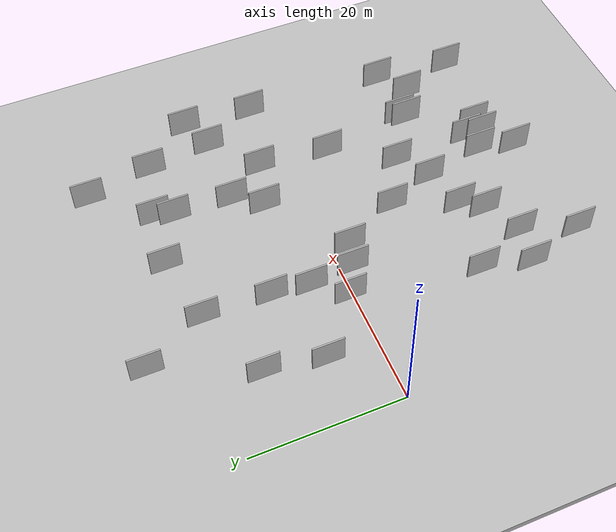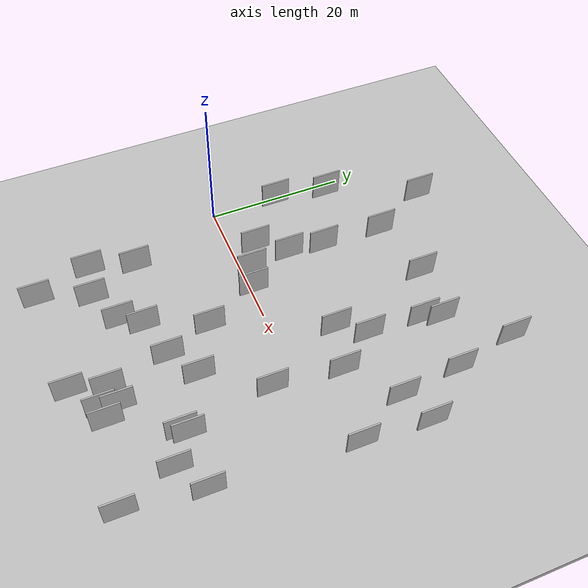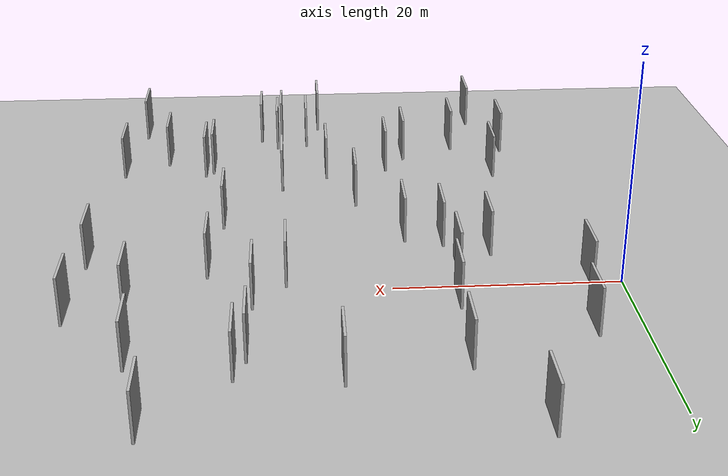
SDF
<?xml version="1.0" encoding="utf-8"?>

<sdf version="1.6">

   <world name="default">

      <gui fullscreen="0">

         <camera name="user_camera">

            <pose>-15 0 4.57585 0 0 0</pose>

            <view_controller>orbit</view_controller>

         </camera>

      </gui>

      <scene>

         <sky>

           <clouds>

             <speed>12</speed>

           </clouds>

         </sky>

         <ambient>0.4 0.4 0.4 1</ambient>

         <background>0.7 0.7 0.7 1</background>

         <shadows>1</shadows>

      </scene>

      <gravity>0 0 -9.8066</gravity>

      <magnetic_field>6e-06 2.3e-05 -4.2e-05</magnetic_field>

      <physics default="0" name="default_physics" type="ode">

         <ode>

            <solver>

               <type>quick</type>

               <iters>10</iters>

               <sor>1.0</sor>

               <use_dynamic_moi_rescaling>0</use_dynamic_moi_rescaling>

            </solver>

            <constraints>

               <cfm>0</cfm>

               <erp>0.2</erp>

               <contact_max_correcting_vel>100</contact_max_correcting_vel>

               <contact_surface_layer>0.001</contact_surface_layer>

            </constraints>

         </ode>

         <max_step_size>0.004</max_step_size>

         <real_time_factor>1</real_time_factor>

         <real_time_update_rate>250</real_time_update_rate>

      </physics>

      <light name="sun" type="directional">

         <cast_shadows>1</cast_shadows>

         <pose>0 0 10 0 0 0</pose>

         <diffuse>0.8 0.8 0.8 1</diffuse>

         <specular>0.2 0.2 0.2 1</specular>

         <attenuation>

            <range>1000</range>

            <constant>0.9</constant>

            <linear>0.01</linear>

            <quadratic>0.001</quadratic>

         </attenuation>

         <direction>-0.5 0.1 -0.9</direction>

      </light>

      <include>

         <name>ground_plane_1</name>

         <uri>model://HANNAS_ground_plane</uri>

         <pose>0 0 0  0 0 0</pose>

      </include>

      <include>

         <name>ground_plane_2</name>

         <uri>model://HANNAS_ground_plane</uri>

         <pose>100 0 0  0 0 0</pose>

      </include>

      <model name="HANNAS_wall_1">

         <static>1</static>

         <pose frame="">25.0478 20.5484 5.0 0.000000 0.000000 1.570796</pose>

         <link name="link">

            <pose frame="">0 0 2.00 0 0 0</pose>

            <collision name="collision">

               <geometry>

                  <box>

                     <size>4.00 0.2 4.00</size>

                  </box>

               </geometry>

               <max_contacts>10</max_contacts>

               <surface>

                  <contact>

                     <ode/>

                  </contact>

                  <bounce/>

                  <friction>

                     <torsional>

                        <ode/>

                     </torsional>

                     <ode/>

                  </friction>

               </surface>

            </collision>

            <visual name="visual">

               <cast_shadows>0</cast_shadows>

               <geometry>

                  <box>

                     <size>4.00 0.2 4.00</size>

                  </box>

               </geometry>

               <material>

                  <script>

                     <uri>model://HANNAS_wall/materials/scripts</uri>

                     <uri>model://HANNAS_wall/materials/textures</uri>

                     <name>vrc/HANNAS_wall</name>

                  </script>

               </material>

            </visual>

            <self_collide>0</self_collide>

            <enable_wind>0</enable_wind>

            <kinematic>0</kinematic>

         </link>

      </model>

      <model name="HANNAS_wall_2">

         <static>1</static>

         <pose frame="">31.3514 -24.1442 5.0 0.000000 0.000000 1.570796</pose>

         <link name="link">

            <pose frame="">0 0 2.00 0 0 0</pose>

            <collision name="collision">

               <geometry>

                  <box>

                     <size>4.00 0.2 4.00</size>

                  </box>

               </geometry>

               <max_contacts>10</max_contacts>

               <surface>

                  <contact>

                     <ode/>

                  </contact>

                  <bounce/>

                  <friction>

                     <torsional>

                        <ode/>

                     </torsional>

                     <ode/>

                  </friction>

               </surface>

            </collision>

            <visual name="visual">

               <cast_shadows>0</cast_shadows>

               <geometry>

                  <box>

                     <size>4.00 0.2 4.00</size>

                  </box>

               </geometry>

               <material>

                  <script>

                     <uri>model://HANNAS_wall/materials/scripts</uri>

                     <uri>model://HANNAS_wall/materials/textures</uri>

                     <name>vrc/HANNAS_wall</name>

                  </script>

               </material>

            </visual>

            <self_collide>0</self_collide>

            <enable_wind>0</enable_wind>

            <kinematic>0</kinematic>

         </link>

      </model>

      <model name="HANNAS_wall_3">

         <static>1</static>

         <pose frame="">42.7811 -25.7961 5.0 0.000000 0.000000 1.570796</pose>

         <link name="link">

            <pose frame="">0 0 2.00 0 0 0</pose>

            <collision name="collision">

               <geometry>

                  <box>

                     <size>4.00 0.2 4.00</size>

                  </box>

               </geometry>

               <max_contacts>10</max_contacts>

               <surface>

                  <contact>

                     <ode/>

                  </contact>

                  <bounce/>

                  <friction>

                     <torsional>

                        <ode/>

                     </torsional>

                     <ode/>

                  </friction>

               </surface>

            </collision>

            <visual name="visual">

               <cast_shadows>0</cast_shadows>

               <geometry>

                  <box>

                     <size>4.00 0.2 4.00</size>

                  </box>

               </geometry>

               <material>

                  <script>

                     <uri>model://HANNAS_wall/materials/scripts</uri>

                     <uri>model://HANNAS_wall/materials/textures</uri>

                     <name>vrc/HANNAS_wall</name>

                  </script>

               </material>

            </visual>

            <self_collide>0</self_collide>

            <enable_wind>0</enable_wind>

            <kinematic>0</kinematic>

         </link>

      </model>

      <model name="HANNAS_wall_4">

         <static>1</static>

         <pose frame="">45.6010 11.1795 5.0 0.000000 0.000000 1.570796</pose>

         <link name="link">

            <pose frame="">0 0 2.00 0 0 0</pose>

            <collision name="collision">

               <geometry>

                  <box>

                     <size>4.00 0.2 4.00</size>

                  </box>

               </geometry>

               <max_contacts>10</max_contacts>

               <surface>

                  <contact>

                     <ode/>

                  </contact>

                  <bounce/>

                  <friction>

                     <torsional>

                        <ode/>

                     </torsional>

                     <ode/>

                  </friction>

               </surface>

            </collision>

            <visual name="visual">

               <cast_shadows>0</cast_shadows>

               <geometry>

                  <box>

                     <size>4.00 0.2 4.00</size>

                  </box>

               </geometry>

               <material>

                  <script>

                     <uri>model://HANNAS_wall/materials/scripts</uri>

                     <uri>model://HANNAS_wall/materials/textures</uri>

                     <name>vrc/HANNAS_wall</name>

                  </script>

               </material>

            </visual>

            <self_collide>0</self_collide>

            <enable_wind>0</enable_wind>

            <kinematic>0</kinematic>

         </link>

      </model>

      <model name="HANNAS_wall_5">

         <static>1</static>

         <pose frame="">40.0653 -18.5719 5.0 0.000000 0.000000 1.570796</pose>

         <link name="link">

            <pose frame="">0 0 2.00 0 0 0</pose>

            <collision name="collision">

               <geometry>

                  <box>

                     <size>4.00 0.2 4.00</size>

                  </box>

               </geometry>

               <max_contacts>10</max_contacts>

               <surface>

                  <contact>

                     <ode/>

                  </contact>

                  <bounce/>

                  <friction>

                     <torsional>

                        <ode/>

                     </torsional>

                     <ode/>

                  </friction>

               </surface>

            </collision>

            <visual name="visual">

               <cast_shadows>0</cast_shadows>

               <geometry>

                  <box>

                     <size>4.00 0.2 4.00</size>

                  </box>

               </geometry>

               <material>

                  <script>

                     <uri>model://HANNAS_wall/materials/scripts</uri>

                     <uri>model://HANNAS_wall/materials/textures</uri>

                     <name>vrc/HANNAS_wall</name>

                  </script>

               </material>

            </visual>

            <self_collide>0</self_collide>

            <enable_wind>0</enable_wind>

            <kinematic>0</kinematic>

         </link>

      </model>

      <model name="HANNAS_wall_6">

         <static>1</static>

         <pose frame="">32.6917 19.5149 5.0 0.000000 0.000000 1.570796</pose>

         <link name="link">

            <pose frame="">0 0 2.00 0 0 0</pose>

            <collision name="collision">

               <geometry>

                  <box>

                     <size>4.00 0.2 4.00</size>

                  </box>

               </geometry>

               <max_contacts>10</max_contacts>

               <surface>

                  <contact>

                     <ode/>

                  </contact>

                  <bounce/>

                  <friction>

                     <torsional>

                        <ode/>

                     </torsional>

                     <ode/>

                  </friction>

               </surface>

            </collision>

            <visual name="visual">

               <cast_shadows>0</cast_shadows>

               <geometry>

                  <box>

                     <size>4.00 0.2 4.00</size>

                  </box>

               </geometry>

               <material>

                  <script>

                     <uri>model://HANNAS_wall/materials/scripts</uri>

                     <uri>model://HANNAS_wall/materials/textures</uri>

                     <name>vrc/HANNAS_wall</name>

                  </script>

               </material>

            </visual>

            <self_collide>0</self_collide>

            <enable_wind>0</enable_wind>

            <kinematic>0</kinematic>

         </link>

      </model>

      <model name="HANNAS_wall_7">

         <static>1</static>

         <pose frame="">12.8693 -21.0058 5.0 0.000000 0.000000 1.570796</pose>

         <link name="link">

            <pose frame="">0 0 2.00 0 0 0</pose>

            <collision name="collision">

               <geometry>

                  <box>

                     <size>4.00 0.2 4.00</size>

                  </box>

               </geometry>

               <max_contacts>10</max_contacts>

               <surface>

                  <contact>

                     <ode/>

                  </contact>

                  <bounce/>

                  <friction>

                     <torsional>

                        <ode/>

                     </torsional>

                     <ode/>

                  </friction>

               </surface>

            </collision>

            <visual name="visual">

               <cast_shadows>0</cast_shadows>

               <geometry>

                  <box>

                     <size>4.00 0.2 4.00</size>

                  </box>

               </geometry>

               <material>

                  <script>

                     <uri>model://HANNAS_wall/materials/scripts</uri>

                     <uri>model://HANNAS_wall/materials/textures</uri>

                     <name>vrc/HANNAS_wall</name>

                  </script>

               </material>

            </visual>

            <self_collide>0</self_collide>

            <enable_wind>0</enable_wind>

            <kinematic>0</kinematic>

         </link>

      </model>

      <model name="HANNAS_wall_8">

         <static>1</static>

         <pose frame="">5.2008 7.8129 5.0 0.000000 0.000000 1.570796</pose>

         <link name="link">

            <pose frame="">0 0 2.00 0 0 0</pose>

            <collision name="collision">

               <geometry>

                  <box>

                     <size>4.00 0.2 4.00</size>

                  </box>

               </geometry>

               <max_contacts>10</max_contacts>

               <surface>

                  <contact>

                     <ode/>

                  </contact>

                  <bounce/>

                  <friction>

                     <torsional>

                        <ode/>

                     </torsional>

                     <ode/>

                  </friction>

               </surface>

            </collision>

            <visual name="visual">

               <cast_shadows>0</cast_shadows>

               <geometry>

                  <box>

                     <size>4.00 0.2 4.00</size>

                  </box>

               </geometry>

               <material>

                  <script>

                     <uri>model://HANNAS_wall/materials/scripts</uri>

                     <uri>model://HANNAS_wall/materials/textures</uri>

                     <name>vrc/HANNAS_wall</name>

                  </script>

               </material>

            </visual>

            <self_collide>0</self_collide>

            <enable_wind>0</enable_wind>

            <kinematic>0</kinematic>

         </link>

      </model>

      <model name="HANNAS_wall_9">

         <static>1</static>

         <pose frame="">6.3631 15.1594 5.0 0.000000 0.000000 1.570796</pose>

         <link name="link">

            <pose frame="">0 0 2.00 0 0 0</pose>

            <collision name="collision">

               <geometry>

                  <box>

                     <size>4.00 0.2 4.00</size>

                  </box>

               </geometry>

               <max_contacts>10</max_contacts>

               <surface>

                  <contact>

                     <ode/>

                  </contact>

                  <bounce/>

                  <friction>

                     <torsional>

                        <ode/>

                     </torsional>

                     <ode/>

                  </friction>

               </surface>

            </collision>

            <visual name="visual">

               <cast_shadows>0</cast_shadows>

               <geometry>

                  <box>

                     <size>4.00 0.2 4.00</size>

                  </box>

               </geometry>

               <material>

                  <script>

                     <uri>model://HANNAS_wall/materials/scripts</uri>

                     <uri>model://HANNAS_wall/materials/textures</uri>

                     <name>vrc/HANNAS_wall</name>

                  </script>

               </material>

            </visual>

            <self_collide>0</self_collide>

            <enable_wind>0</enable_wind>

            <kinematic>0</kinematic>

         </link>

      </model>

      <model name="HANNAS_wall_10">

         <static>1</static>

         <pose frame="">26.9566 -22.7324 5.0 0.000000 0.000000 1.570796</pose>

         <link name="link">

            <pose frame="">0 0 2.00 0 0 0</pose>

            <collision name="collision">

               <geometry>

                  <box>

                     <size>4.00 0.2 4.00</size>

                  </box>

               </geometry>

               <max_contacts>10</max_contacts>

               <surface>

                  <contact>

                     <ode/>

                  </contact>

                  <bounce/>

                  <friction>

                     <torsional>

                        <ode/>

                     </torsional>

                     <ode/>

                  </friction>

               </surface>

            </collision>

            <visual name="visual">

               <cast_shadows>0</cast_shadows>

               <geometry>

                  <box>

                     <size>4.00 0.2 4.00</size>

                  </box>

               </geometry>

               <material>

                  <script>

                     <uri>model://HANNAS_wall/materials/scripts</uri>

                     <uri>model://HANNAS_wall/materials/textures</uri>

                     <name>vrc/HANNAS_wall</name>

                  </script>

               </material>

            </visual>

            <self_collide>0</self_collide>

            <enable_wind>0</enable_wind>

            <kinematic>0</kinematic>

         </link>

      </model>

      <model name="HANNAS_wall_11">

         <static>1</static>

         <pose frame="">34.3238 -4.4739 5.0 0.000000 0.000000 1.570796</pose>

         <link name="link">

            <pose frame="">0 0 2.00 0 0 0</pose>

            <collision name="collision">

               <geometry>

                  <box>

                     <size>4.00 0.2 4.00</size>

                  </box>

               </geometry>

               <max_contacts>10</max_contacts>

               <surface>

                  <contact>

                     <ode/>

                  </contact>

                  <bounce/>

                  <friction>

                     <torsional>

                        <ode/>

                     </torsional>

                     <ode/>

                  </friction>

               </surface>

            </collision>

            <visual name="visual">

               <cast_shadows>0</cast_shadows>

               <geometry>

                  <box>

                     <size>4.00 0.2 4.00</size>

                  </box>

               </geometry>

               <material>

                  <script>

                     <uri>model://HANNAS_wall/materials/scripts</uri>

                     <uri>model://HANNAS_wall/materials/textures</uri>

                     <name>vrc/HANNAS_wall</name>

                  </script>

               </material>

            </visual>

            <self_collide>0</self_collide>

            <enable_wind>0</enable_wind>

            <kinematic>0</kinematic>

         </link>

      </model>

      <model name="HANNAS_wall_12">

         <static>1</static>

         <pose frame="">31.8464 17.1739 5.0 0.000000 0.000000 1.570796</pose>

         <link name="link">

            <pose frame="">0 0 2.00 0 0 0</pose>

            <collision name="collision">

               <geometry>

                  <box>

                     <size>4.00 0.2 4.00</size>

                  </box>

               </geometry>

               <max_contacts>10</max_contacts>

               <surface>

                  <contact>

                     <ode/>

                  </contact>

                  <bounce/>

                  <friction>

                     <torsional>

                        <ode/>

                     </torsional>

                     <ode/>

                  </friction>

               </surface>

            </collision>

            <visual name="visual">

               <cast_shadows>0</cast_shadows>

               <geometry>

                  <box>

                     <size>4.00 0.2 4.00</size>

                  </box>

               </geometry>

               <material>

                  <script>

                     <uri>model://HANNAS_wall/materials/scripts</uri>

                     <uri>model://HANNAS_wall/materials/textures</uri>

                     <name>vrc/HANNAS_wall</name>

                  </script>

               </material>

            </visual>

            <self_collide>0</self_collide>

            <enable_wind>0</enable_wind>

            <kinematic>0</kinematic>

         </link>

      </model>

      <model name="HANNAS_wall_13">

         <static>1</static>

         <pose frame="">41.2607 9.4201 5.0 0.000000 0.000000 1.570796</pose>

         <link name="link">

            <pose frame="">0 0 2.00 0 0 0</pose>

            <collision name="collision">

               <geometry>

                  <box>

                     <size>4.00 0.2 4.00</size>

                  </box>

               </geometry>

               <max_contacts>10</max_contacts>

               <surface>

                  <contact>

                     <ode/>

                  </contact>

                  <bounce/>

                  <friction>

                     <torsional>

                        <ode/>

                     </torsional>

                     <ode/>

                  </friction>

               </surface>

            </collision>

            <visual name="visual">

               <cast_shadows>0</cast_shadows>

               <geometry>

                  <box>

                     <size>4.00 0.2 4.00</size>

                  </box>

               </geometry>

               <material>

                  <script>

                     <uri>model://HANNAS_wall/materials/scripts</uri>

                     <uri>model://HANNAS_wall/materials/textures</uri>

                     <name>vrc/HANNAS_wall</name>

                  </script>

               </material>

            </visual>

            <self_collide>0</self_collide>

            <enable_wind>0</enable_wind>

            <kinematic>0</kinematic>

         </link>

      </model>

      <model name="HANNAS_wall_14">

         <static>1</static>

         <pose frame="">38.6451 26.2085 5.0 0.000000 0.000000 1.570796</pose>

         <link name="link">

            <pose frame="">0 0 2.00 0 0 0</pose>

            <collision name="collision">

               <geometry>

                  <box>

                     <size>4.00 0.2 4.00</size>

                  </box>

               </geometry>

               <max_contacts>10</max_contacts>

               <surface>

                  <contact>

                     <ode/>

                  </contact>

                  <bounce/>

                  <friction>

                     <torsional>

                        <ode/>

                     </torsional>

                     <ode/>

                  </friction>

               </surface>

            </collision>

            <visual name="visual">

               <cast_shadows>0</cast_shadows>

               <geometry>

                  <box>

                     <size>4.00 0.2 4.00</size>

                  </box>

               </geometry>

               <material>

                  <script>

                     <uri>model://HANNAS_wall/materials/scripts</uri>

                     <uri>model://HANNAS_wall/materials/textures</uri>

                     <name>vrc/HANNAS_wall</name>

                  </script>

               </material>

            </visual>

            <self_collide>0</self_collide>

            <enable_wind>0</enable_wind>

            <kinematic>0</kinematic>

         </link>

      </model>

      <model name="HANNAS_wall_15">

         <static>1</static>

         <pose frame="">35.2316 4.5443 5.0 0.000000 0.000000 1.570796</pose>

         <link name="link">

            <pose frame="">0 0 2.00 0 0 0</pose>

            <collision name="collision">

               <geometry>

                  <box>

                     <size>4.00 0.2 4.00</size>

                  </box>

               </geometry>

               <max_contacts>10</max_contacts>

               <surface>

                  <contact>

                     <ode/>

                  </contact>

                  <bounce/>

                  <friction>

                     <torsional>

                        <ode/>

                     </torsional>

                     <ode/>

                  </friction>

               </surface>

            </collision>

            <visual name="visual">

               <cast_shadows>0</cast_shadows>

               <geometry>

                  <box>

                     <size>4.00 0.2 4.00</size>

                  </box>

               </geometry>

               <material>

                  <script>

                     <uri>model://HANNAS_wall/materials/scripts</uri>

                     <uri>model://HANNAS_wall/materials/textures</uri>

                     <name>vrc/HANNAS_wall</name>

                  </script>

               </material>

            </visual>

            <self_collide>0</self_collide>

            <enable_wind>0</enable_wind>

            <kinematic>0</kinematic>

         </link>

      </model>

      <model name="HANNAS_wall_16">

         <static>1</static>

         <pose frame="">43.9564 -15.9695 5.0 0.000000 0.000000 1.570796</pose>

         <link name="link">

            <pose frame="">0 0 2.00 0 0 0</pose>

            <collision name="collision">

               <geometry>

                  <box>

                     <size>4.00 0.2 4.00</size>

                  </box>

               </geometry>

               <max_contacts>10</max_contacts>

               <surface>

                  <contact>

                     <ode/>

                  </contact>

                  <bounce/>

                  <friction>

                     <torsional>

                        <ode/>

                     </torsional>

                     <ode/>

                  </friction>

               </surface>

            </collision>

            <visual name="visual">

               <cast_shadows>0</cast_shadows>

               <geometry>

                  <box>

                     <size>4.00 0.2 4.00</size>

                  </box>

               </geometry>

               <material>

                  <script>

                     <uri>model://HANNAS_wall/materials/scripts</uri>

                     <uri>model://HANNAS_wall/materials/textures</uri>

                     <name>vrc/HANNAS_wall</name>

                  </script>

               </material>

            </visual>

            <self_collide>0</self_collide>

            <enable_wind>0</enable_wind>

            <kinematic>0</kinematic>

         </link>

      </model>

      <model name="HANNAS_wall_17">

         <static>1</static>

         <pose frame="">11.8576 27.1807 5.0 0.000000 0.000000 1.570796</pose>

         <link name="link">

            <pose frame="">0 0 2.00 0 0 0</pose>

            <collision name="collision">

               <geometry>

                  <box>

                     <size>4.00 0.2 4.00</size>

                  </box>

               </geometry>

               <max_contacts>10</max_contacts>

               <surface>

                  <contact>

                     <ode/>

                  </contact>

                  <bounce/>

                  <friction>

                     <torsional>

                        <ode/>

                     </torsional>

                     <ode/>

                  </friction>

               </surface>

            </collision>

            <visual name="visual">

               <cast_shadows>0</cast_shadows>

               <geometry>

                  <box>

                     <size>4.00 0.2 4.00</size>

                  </box>

               </geometry>

               <material>

                  <script>

                     <uri>model://HANNAS_wall/materials/scripts</uri>

                     <uri>model://HANNAS_wall/materials/textures</uri>

                     <name>vrc/HANNAS_wall</name>

                  </script>

               </material>

            </visual>

            <self_collide>0</self_collide>

            <enable_wind>0</enable_wind>

            <kinematic>0</kinematic>

         </link>

      </model>

      <model name="HANNAS_wall_18">

         <static>1</static>

         <pose frame="">25.2072 -14.6613 5.0 0.000000 0.000000 1.570796</pose>

         <link name="link">

            <pose frame="">0 0 2.00 0 0 0</pose>

            <collision name="collision">

               <geometry>

                  <box>

                     <size>4.00 0.2 4.00</size>

                  </box>

               </geometry>

               <max_contacts>10</max_contacts>

               <surface>

                  <contact>

                     <ode/>

                  </contact>

                  <bounce/>

                  <friction>

                     <torsional>

                        <ode/>

                     </torsional>

                     <ode/>

                  </friction>

               </surface>

            </collision>

            <visual name="visual">

               <cast_shadows>0</cast_shadows>

               <geometry>

                  <box>

                     <size>4.00 0.2 4.00</size>

                  </box>

               </geometry>

               <material>

                  <script>

                     <uri>model://HANNAS_wall/materials/scripts</uri>

                     <uri>model://HANNAS_wall/materials/textures</uri>

                     <name>vrc/HANNAS_wall</name>

                  </script>

               </material>

            </visual>

            <self_collide>0</self_collide>

            <enable_wind>0</enable_wind>

            <kinematic>0</kinematic>

         </link>

      </model>

      <model name="HANNAS_wall_19">

         <static>1</static>

         <pose frame="">19.6076 -16.0816 5.0 0.000000 0.000000 1.570796</pose>

         <link name="link">

            <pose frame="">0 0 2.00 0 0 0</pose>

            <collision name="collision">

               <geometry>

                  <box>

                     <size>4.00 0.2 4.00</size>

                  </box>

               </geometry>

               <max_contacts>10</max_contacts>

               <surface>

                  <contact>

                     <ode/>

                  </contact>

                  <bounce/>

                  <friction>

                     <torsional>

                        <ode/>

                     </torsional>

                     <ode/>

                  </friction>

               </surface>

            </collision>

            <visual name="visual">

               <cast_shadows>0</cast_shadows>

               <geometry>

                  <box>

                     <size>4.00 0.2 4.00</size>

                  </box>

               </geometry>

               <material>

                  <script>

                     <uri>model://HANNAS_wall/materials/scripts</uri>

                     <uri>model://HANNAS_wall/materials/textures</uri>

                     <name>vrc/HANNAS_wall</name>

                  </script>

               </material>

            </visual>

            <self_collide>0</self_collide>

            <enable_wind>0</enable_wind>

            <kinematic>0</kinematic>

         </link>

      </model>

      <model name="HANNAS_wall_20">

         <static>1</static>

         <pose frame="">15.8309 10.5308 5.0 0.000000 0.000000 1.570796</pose>

         <link name="link">

            <pose frame="">0 0 2.00 0 0 0</pose>

            <collision name="collision">

               <geometry>

                  <box>

                     <size>4.00 0.2 4.00</size>

                  </box>

               </geometry>

               <max_contacts>10</max_contacts>

               <surface>

                  <contact>

                     <ode/>

                  </contact>

                  <bounce/>

                  <friction>

                     <torsional>

                        <ode/>

                     </torsional>

                     <ode/>

                  </friction>

               </surface>

            </collision>

            <visual name="visual">

               <cast_shadows>0</cast_shadows>

               <geometry>

                  <box>

                     <size>4.00 0.2 4.00</size>

                  </box>

               </geometry>

               <material>

                  <script>

                     <uri>model://HANNAS_wall/materials/scripts</uri>

                     <uri>model://HANNAS_wall/materials/textures</uri>

                     <name>vrc/HANNAS_wall</name>

                  </script>

               </material>

            </visual>

            <self_collide>0</self_collide>

            <enable_wind>0</enable_wind>

            <kinematic>0</kinematic>

         </link>

      </model>

      <model name="HANNAS_wall_21">

         <static>1</static>

         <pose frame="">29.7728 -22.2011 5.0 0.000000 0.000000 1.570796</pose>

         <link name="link">

            <pose frame="">0 0 2.00 0 0 0</pose>

            <collision name="collision">

               <geometry>

                  <box>

                     <size>4.00 0.2 4.00</size>

                  </box>

               </geometry>

               <max_contacts>10</max_contacts>

               <surface>

                  <contact>

                     <ode/>

                  </contact>

                  <bounce/>

                  <friction>

                     <torsional>

                        <ode/>

                     </torsional>

                     <ode/>

                  </friction>

               </surface>

            </collision>

            <visual name="visual">

               <cast_shadows>0</cast_shadows>

               <geometry>

                  <box>

                     <size>4.00 0.2 4.00</size>

                  </box>

               </geometry>

               <material>

                  <script>

                     <uri>model://HANNAS_wall/materials/scripts</uri>

                     <uri>model://HANNAS_wall/materials/textures</uri>

                     <name>vrc/HANNAS_wall</name>

                  </script>

               </material>

            </visual>

            <self_collide>0</self_collide>

            <enable_wind>0</enable_wind>

            <kinematic>0</kinematic>

         </link>

      </model>

      <model name="HANNAS_wall_22">

         <static>1</static>

         <pose frame="">15.3001 5.6760 5.0 0.000000 0.000000 1.570796</pose>

         <link name="link">

            <pose frame="">0 0 2.00 0 0 0</pose>

            <collision name="collision">

               <geometry>

                  <box>

                     <size>4.00 0.2 4.00</size>

                  </box>

               </geometry>

               <max_contacts>10</max_contacts>

               <surface>

                  <contact>

                     <ode/>

                  </contact>

                  <bounce/>

                  <friction>

                     <torsional>

                        <ode/>

                     </torsional>

                     <ode/>

                  </friction>

               </surface>

            </collision>

            <visual name="visual">

               <cast_shadows>0</cast_shadows>

               <geometry>

                  <box>

                     <size>4.00 0.2 4.00</size>

                  </box>

               </geometry>

               <material>

                  <script>

                     <uri>model://HANNAS_wall/materials/scripts</uri>

                     <uri>model://HANNAS_wall/materials/textures</uri>

                     <name>vrc/HANNAS_wall</name>

                  </script>

               </material>

            </visual>

            <self_collide>0</self_collide>

            <enable_wind>0</enable_wind>

            <kinematic>0</kinematic>

         </link>

      </model>

      <model name="HANNAS_wall_23">

         <static>1</static>

         <pose frame="">40.3450 17.6784 5.0 0.000000 0.000000 1.570796</pose>

         <link name="link">

            <pose frame="">0 0 2.00 0 0 0</pose>

            <collision name="collision">

               <geometry>

                  <box>

                     <size>4.00 0.2 4.00</size>

                  </box>

               </geometry>

               <max_contacts>10</max_contacts>

               <surface>

                  <contact>

                     <ode/>

                  </contact>

                  <bounce/>

                  <friction>

                     <torsional>

                        <ode/>

                     </torsional>

                     <ode/>

                  </friction>

               </surface>

            </collision>

            <visual name="visual">

               <cast_shadows>0</cast_shadows>

               <geometry>

                  <box>

                     <size>4.00 0.2 4.00</size>

                  </box>

               </geometry>

               <material>

                  <script>

                     <uri>model://HANNAS_wall/materials/scripts</uri>

                     <uri>model://HANNAS_wall/materials/textures</uri>

                     <name>vrc/HANNAS_wall</name>

                  </script>

               </material>

            </visual>

            <self_collide>0</self_collide>

            <enable_wind>0</enable_wind>

            <kinematic>0</kinematic>

         </link>

      </model>

      <model name="HANNAS_wall_24">

         <static>1</static>

         <pose frame="">19.1215 -0.9535 5.0 0.000000 0.000000 1.570796</pose>

         <link name="link">

            <pose frame="">0 0 2.00 0 0 0</pose>

            <collision name="collision">

               <geometry>

                  <box>

                     <size>4.00 0.2 4.00</size>

                  </box>

               </geometry>

               <max_contacts>10</max_contacts>

               <surface>

                  <contact>

                     <ode/>

                  </contact>

                  <bounce/>

                  <friction>

                     <torsional>

                        <ode/>

                     </torsional>

                     <ode/>

                  </friction>

               </surface>

            </collision>

            <visual name="visual">

               <cast_shadows>0</cast_shadows>

               <geometry>

                  <box>

                     <size>4.00 0.2 4.00</size>

                  </box>

               </geometry>

               <material>

                  <script>

                     <uri>model://HANNAS_wall/materials/scripts</uri>

                     <uri>model://HANNAS_wall/materials/textures</uri>

                     <name>vrc/HANNAS_wall</name>

                  </script>

               </material>

            </visual>

            <self_collide>0</self_collide>

            <enable_wind>0</enable_wind>

            <kinematic>0</kinematic>

         </link>

      </model>

      <model name="HANNAS_wall_25">

         <static>1</static>

         <pose frame="">36.4464 -15.7365 5.0 0.000000 0.000000 1.570796</pose>

         <link name="link">

            <pose frame="">0 0 2.00 0 0 0</pose>

            <collision name="collision">

               <geometry>

                  <box>

                     <size>4.00 0.2 4.00</size>

                  </box>

               </geometry>

               <max_contacts>10</max_contacts>

               <surface>

                  <contact>

                     <ode/>

                  </contact>

                  <bounce/>

                  <friction>

                     <torsional>

                        <ode/>

                     </torsional>

                     <ode/>

                  </friction>

               </surface>

            </collision>

            <visual name="visual">

               <cast_shadows>0</cast_shadows>

               <geometry>

                  <box>

                     <size>4.00 0.2 4.00</size>

                  </box>

               </geometry>

               <material>

                  <script>

                     <uri>model://HANNAS_wall/materials/scripts</uri>

                     <uri>model://HANNAS_wall/materials/textures</uri>

                     <name>vrc/HANNAS_wall</name>

                  </script>

               </material>

            </visual>

            <self_collide>0</self_collide>

            <enable_wind>0</enable_wind>

            <kinematic>0</kinematic>

         </link>

      </model>

      <model name="HANNAS_wall_26">

         <static>1</static>

         <pose frame="">9.6724 -14.1734 5.0 0.000000 0.000000 1.570796</pose>

         <link name="link">

            <pose frame="">0 0 2.00 0 0 0</pose>

            <collision name="collision">

               <geometry>

                  <box>

                     <size>4.00 0.2 4.00</size>

                  </box>

               </geometry>

               <max_contacts>10</max_contacts>

               <surface>

                  <contact>

                     <ode/>

                  </contact>

                  <bounce/>

                  <friction>

                     <torsional>

                        <ode/>

                     </torsional>

                     <ode/>

                  </friction>

               </surface>

            </collision>

            <visual name="visual">

               <cast_shadows>0</cast_shadows>

               <geometry>

                  <box>

                     <size>4.00 0.2 4.00</size>

                  </box>

               </geometry>

               <material>

                  <script>

                     <uri>model://HANNAS_wall/materials/scripts</uri>

                     <uri>model://HANNAS_wall/materials/textures</uri>

                     <name>vrc/HANNAS_wall</name>

                  </script>

               </material>

            </visual>

            <self_collide>0</self_collide>

            <enable_wind>0</enable_wind>

            <kinematic>0</kinematic>

         </link>

      </model>

      <model name="HANNAS_wall_27">

         <static>1</static>

         <pose frame="">45.0177 2.2825 5.0 0.000000 0.000000 1.570796</pose>

         <link name="link">

            <pose frame="">0 0 2.00 0 0 0</pose>

            <collision name="collision">

               <geometry>

                  <box>

                     <size>4.00 0.2 4.00</size>

                  </box>

               </geometry>

               <max_contacts>10</max_contacts>

               <surface>

                  <contact>

                     <ode/>

                  </contact>

                  <bounce/>

                  <friction>

                     <torsional>

                        <ode/>

                     </torsional>

                     <ode/>

                  </friction>

               </surface>

            </collision>

            <visual name="visual">

               <cast_shadows>0</cast_shadows>

               <geometry>

                  <box>

                     <size>4.00 0.2 4.00</size>

                  </box>

               </geometry>

               <material>

                  <script>

                     <uri>model://HANNAS_wall/materials/scripts</uri>

                     <uri>model://HANNAS_wall/materials/textures</uri>

                     <name>vrc/HANNAS_wall</name>

                  </script>

               </material>

            </visual>

            <self_collide>0</self_collide>

            <enable_wind>0</enable_wind>

            <kinematic>0</kinematic>

         </link>

      </model>

      <model name="HANNAS_wall_28">

         <static>1</static>

         <pose frame="">31.5798 9.6923 5.0 0.000000 0.000000 1.570796</pose>

         <link name="link">

            <pose frame="">0 0 2.00 0 0 0</pose>

            <collision name="collision">

               <geometry>

                  <box>

                     <size>4.00 0.2 4.00</size>

                  </box>

               </geometry>

               <max_contacts>10</max_contacts>

               <surface>

                  <contact>

                     <ode/>

                  </contact>

                  <bounce/>

                  <friction>

                     <torsional>

                        <ode/>

                     </torsional>

                     <ode/>

                  </friction>

               </surface>

            </collision>

            <visual name="visual">

               <cast_shadows>0</cast_shadows>

               <geometry>

                  <box>

                     <size>4.00 0.2 4.00</size>

                  </box>

               </geometry>

               <material>

                  <script>

                     <uri>model://HANNAS_wall/materials/scripts</uri>

                     <uri>model://HANNAS_wall/materials/textures</uri>

                     <name>vrc/HANNAS_wall</name>

                  </script>

               </material>

            </visual>

            <self_collide>0</self_collide>

            <enable_wind>0</enable_wind>

            <kinematic>0</kinematic>

         </link>

      </model>

      <model name="HANNAS_wall_29">

         <static>1</static>

         <pose frame="">29.3862 -24.2683 5.0 0.000000 0.000000 1.570796</pose>

         <link name="link">

            <pose frame="">0 0 2.00 0 0 0</pose>

            <collision name="collision">

               <geometry>

                  <box>

                     <size>4.00 0.2 4.00</size>

                  </box>

               </geometry>

               <max_contacts>10</max_contacts>

               <surface>

                  <contact>

                     <ode/>

                  </contact>

                  <bounce/>

                  <friction>

                     <torsional>

                        <ode/>

                     </torsional>

                     <ode/>

                  </friction>

               </surface>

            </collision>

            <visual name="visual">

               <cast_shadows>0</cast_shadows>

               <geometry>

                  <box>

                     <size>4.00 0.2 4.00</size>

                  </box>

               </geometry>

               <material>

                  <script>

                     <uri>model://HANNAS_wall/materials/scripts</uri>

                     <uri>model://HANNAS_wall/materials/textures</uri>

                     <name>vrc/HANNAS_wall</name>

                  </script>

               </material>

            </visual>

            <self_collide>0</self_collide>

            <enable_wind>0</enable_wind>

            <kinematic>0</kinematic>

         </link>

      </model>

      <model name="HANNAS_wall_30">

         <static>1</static>

         <pose frame="">22.8193 -8.3436 5.0 0.000000 0.000000 1.570796</pose>

         <link name="link">

            <pose frame="">0 0 2.00 0 0 0</pose>

            <collision name="collision">

               <geometry>

                  <box>

                     <size>4.00 0.2 4.00</size>

                  </box>

               </geometry>

               <max_contacts>10</max_contacts>

               <surface>

                  <contact>

                     <ode/>

                  </contact>

                  <bounce/>

                  <friction>

                     <torsional>

                        <ode/>

                     </torsional>

                     <ode/>

                  </friction>

               </surface>

            </collision>

            <visual name="visual">

               <cast_shadows>0</cast_shadows>

               <geometry>

                  <box>

                     <size>4.00 0.2 4.00</size>

                  </box>

               </geometry>

               <material>

                  <script>

                     <uri>model://HANNAS_wall/materials/scripts</uri>

                     <uri>model://HANNAS_wall/materials/textures</uri>

                     <name>vrc/HANNAS_wall</name>

                  </script>

               </material>

            </visual>

            <self_collide>0</self_collide>

            <enable_wind>0</enable_wind>

            <kinematic>0</kinematic>

         </link>

      </model>

      <model name="HANNAS_wall_31">

         <static>1</static>

         <pose frame="">29.0245 6.2809 5.0 0.000000 0.000000 1.570796</pose>

         <link name="link">

            <pose frame="">0 0 2.00 0 0 0</pose>

            <collision name="collision">

               <geometry>

                  <box>

                     <size>4.00 0.2 4.00</size>

                  </box>

               </geometry>

               <max_contacts>10</max_contacts>

               <surface>

                  <contact>

                     <ode/>

                  </contact>

                  <bounce/>

                  <friction>

                     <torsional>

                        <ode/>

                     </torsional>

                     <ode/>

                  </friction>

               </surface>

            </collision>

            <visual name="visual">

               <cast_shadows>0</cast_shadows>

               <geometry>

                  <box>

                     <size>4.00 0.2 4.00</size>

                  </box>

               </geometry>

               <material>

                  <script>

                     <uri>model://HANNAS_wall/materials/scripts</uri>

                     <uri>model://HANNAS_wall/materials/textures</uri>

                     <name>vrc/HANNAS_wall</name>

                  </script>

               </material>

            </visual>

            <self_collide>0</self_collide>

            <enable_wind>0</enable_wind>

            <kinematic>0</kinematic>

         </link>

      </model>

      <model name="HANNAS_wall_32">

         <static>1</static>

         <pose frame="">16.0815 18.9887 5.0 0.000000 0.000000 1.570796</pose>

         <link name="link">

            <pose frame="">0 0 2.00 0 0 0</pose>

            <collision name="collision">

               <geometry>

                  <box>

                     <size>4.00 0.2 4.00</size>

                  </box>

               </geometry>

               <max_contacts>10</max_contacts>

               <surface>

                  <contact>

                     <ode/>

                  </contact>

                  <bounce/>

                  <friction>

                     <torsional>

                        <ode/>

                     </torsional>

                     <ode/>

                  </friction>

               </surface>

            </collision>

            <visual name="visual">

               <cast_shadows>0</cast_shadows>

               <geometry>

                  <box>

                     <size>4.00 0.2 4.00</size>

                  </box>

               </geometry>

               <material>

                  <script>

                     <uri>model://HANNAS_wall/materials/scripts</uri>

                     <uri>model://HANNAS_wall/materials/textures</uri>

                     <name>vrc/HANNAS_wall</name>

                  </script>

               </material>

            </visual>

            <self_collide>0</self_collide>

            <enable_wind>0</enable_wind>

            <kinematic>0</kinematic>

         </link>

      </model>

      <model name="HANNAS_wall_33">

         <static>1</static>

         <pose frame="">10.4331 -27.6909 5.0 0.000000 0.000000 1.570796</pose>

         <link name="link">

            <pose frame="">0 0 2.00 0 0 0</pose>

            <collision name="collision">

               <geometry>

                  <box>

                     <size>4.00 0.2 4.00</size>

                  </box>

               </geometry>

               <max_contacts>10</max_contacts>

               <surface>

                  <contact>

                     <ode/>

                  </contact>

                  <bounce/>

                  <friction>

                     <torsional>

                        <ode/>

                     </torsional>

                     <ode/>

                  </friction>

               </surface>

            </collision>

            <visual name="visual">

               <cast_shadows>0</cast_shadows>

               <geometry>

                  <box>

                     <size>4.00 0.2 4.00</size>

                  </box>

               </geometry>

               <material>

                  <script>

                     <uri>model://HANNAS_wall/materials/scripts</uri>

                     <uri>model://HANNAS_wall/materials/textures</uri>

                     <name>vrc/HANNAS_wall</name>

                  </script>

               </material>

            </visual>

            <self_collide>0</self_collide>

            <enable_wind>0</enable_wind>

            <kinematic>0</kinematic>

         </link>

      </model>

      <model name="HANNAS_wall_34">

         <static>1</static>

         <pose frame="">12.3306 1.9540 5.0 0.000000 0.000000 1.570796</pose>

         <link name="link">

            <pose frame="">0 0 2.00 0 0 0</pose>

            <collision name="collision">

               <geometry>

                  <box>

                     <size>4.00 0.2 4.00</size>

                  </box>

               </geometry>

               <max_contacts>10</max_contacts>

               <surface>

                  <contact>

                     <ode/>

                  </contact>

                  <bounce/>

                  <friction>

                     <torsional>

                        <ode/>

                     </torsional>

                     <ode/>

                  </friction>

               </surface>

            </collision>

            <visual name="visual">

               <cast_shadows>0</cast_shadows>

               <geometry>

                  <box>

                     <size>4.00 0.2 4.00</size>

                  </box>

               </geometry>

               <material>

                  <script>

                     <uri>model://HANNAS_wall/materials/scripts</uri>

                     <uri>model://HANNAS_wall/materials/textures</uri>

                     <name>vrc/HANNAS_wall</name>

                  </script>

               </material>

            </visual>

            <self_collide>0</self_collide>

            <enable_wind>0</enable_wind>

            <kinematic>0</kinematic>

         </link>

      </model>

      <model name="HANNAS_wall_35">

         <static>1</static>

         <pose frame="">17.7262 -18.7184 5.0 0.000000 0.000000 1.570796</pose>

         <link name="link">

            <pose frame="">0 0 2.00 0 0 0</pose>

            <collision name="collision">

               <geometry>

                  <box>

                     <size>4.00 0.2 4.00</size>

                  </box>

               </geometry>

               <max_contacts>10</max_contacts>

               <surface>

                  <contact>

                     <ode/>

                  </contact>

                  <bounce/>

                  <friction>

                     <torsional>

                        <ode/>

                     </torsional>

                     <ode/>

                  </friction>

               </surface>

            </collision>

            <visual name="visual">

               <cast_shadows>0</cast_shadows>

               <geometry>

                  <box>

                     <size>4.00 0.2 4.00</size>

                  </box>

               </geometry>

               <material>

                  <script>

                     <uri>model://HANNAS_wall/materials/scripts</uri>

                     <uri>model://HANNAS_wall/materials/textures</uri>

                     <name>vrc/HANNAS_wall</name>

                  </script>

               </material>

            </visual>

            <self_collide>0</self_collide>

            <enable_wind>0</enable_wind>

            <kinematic>0</kinematic>

         </link>

      </model>

      <model name="HANNAS_wall_36">

         <static>1</static>

         <pose frame="">29.3088 -12.0471 5.0 0.000000 0.000000 1.570796</pose>

         <link name="link">

            <pose frame="">0 0 2.00 0 0 0</pose>

            <collision name="collision">

               <geometry>

                  <box>

                     <size>4.00 0.2 4.00</size>

                  </box>

               </geometry>

               <max_contacts>10</max_contacts>

               <surface>

                  <contact>

                     <ode/>

                  </contact>

                  <bounce/>

                  <friction>

                     <torsional>

                        <ode/>

                     </torsional>

                     <ode/>

                  </friction>

               </surface>

            </collision>

            <visual name="visual">

               <cast_shadows>0</cast_shadows>

               <geometry>

                  <box>

                     <size>4.00 0.2 4.00</size>

                  </box>

               </geometry>

               <material>

                  <script>

                     <uri>model://HANNAS_wall/materials/scripts</uri>

                     <uri>model://HANNAS_wall/materials/textures</uri>

                     <name>vrc/HANNAS_wall</name>

                  </script>

               </material>

            </visual>

            <self_collide>0</self_collide>

            <enable_wind>0</enable_wind>

            <kinematic>0</kinematic>

         </link>

      </model>

      <model name="HANNAS_wall_37">

         <static>1</static>

         <pose frame="">15.9998 0.0402 5.0 0.000000 0.000000 1.570796</pose>

         <link name="link">

            <pose frame="">0 0 2.00 0 0 0</pose>

            <collision name="collision">

               <geometry>

                  <box>

                     <size>4.00 0.2 4.00</size>

                  </box>

               </geometry>

               <max_contacts>10</max_contacts>

               <surface>

                  <contact>

                     <ode/>

                  </contact>

                  <bounce/>

                  <friction>

                     <torsional>

                        <ode/>

                     </torsional>

                     <ode/>

                  </friction>

               </surface>

            </collision>

            <visual name="visual">

               <cast_shadows>0</cast_shadows>

               <geometry>

                  <box>

                     <size>4.00 0.2 4.00</size>

                  </box>

               </geometry>

               <material>

                  <script>

                     <uri>model://HANNAS_wall/materials/scripts</uri>

                     <uri>model://HANNAS_wall/materials/textures</uri>

                     <name>vrc/HANNAS_wall</name>

                  </script>

               </material>

            </visual>

            <self_collide>0</self_collide>

            <enable_wind>0</enable_wind>

            <kinematic>0</kinematic>

         </link>

      </model>

      <model name="HANNAS_wall_38">

         <static>1</static>

         <pose frame="">25.7337 -27.2070 5.0 0.000000 0.000000 1.570796</pose>

         <link name="link">

            <pose frame="">0 0 2.00 0 0 0</pose>

            <collision name="collision">

               <geometry>

                  <box>

                     <size>4.00 0.2 4.00</size>

                  </box>

               </geometry>

               <max_contacts>10</max_contacts>

               <surface>

                  <contact>

                     <ode/>

                  </contact>

                  <bounce/>

                  <friction>

                     <torsional>

                        <ode/>

                     </torsional>

                     <ode/>

                  </friction>

               </surface>

            </collision>

            <visual name="visual">

               <cast_shadows>0</cast_shadows>

               <geometry>

                  <box>

                     <size>4.00 0.2 4.00</size>

                  </box>

               </geometry>

               <material>

                  <script>

                     <uri>model://HANNAS_wall/materials/scripts</uri>

                     <uri>model://HANNAS_wall/materials/textures</uri>

                     <name>vrc/HANNAS_wall</name>

                  </script>

               </material>

            </visual>

            <self_collide>0</self_collide>

            <enable_wind>0</enable_wind>

            <kinematic>0</kinematic>

         </link>

      </model>

      <model name="HANNAS_wall_39">

         <static>1</static>

         <pose frame="">8.0781 -20.2077 5.0 0.000000 0.000000 1.570796</pose>

         <link name="link">

            <pose frame="">0 0 2.00 0 0 0</pose>

            <collision name="collision">

               <geometry>

                  <box>

                     <size>4.00 0.2 4.00</size>

                  </box>

               </geometry>

               <max_contacts>10</max_contacts>

               <surface>

                  <contact>

                     <ode/>

                  </contact>

                  <bounce/>

                  <friction>

                     <torsional>

                        <ode/>

                     </torsional>

                     <ode/>

                  </friction>

               </surface>

            </collision>

            <visual name="visual">

               <cast_shadows>0</cast_shadows>

               <geometry>

                  <box>

                     <size>4.00 0.2 4.00</size>

                  </box>

               </geometry>

               <material>

                  <script>

                     <uri>model://HANNAS_wall/materials/scripts</uri>

                     <uri>model://HANNAS_wall/materials/textures</uri>

                     <name>vrc/HANNAS_wall</name>

                  </script>

               </material>

            </visual>

            <self_collide>0</self_collide>

            <enable_wind>0</enable_wind>

            <kinematic>0</kinematic>

         </link>

      </model>

      <model name="HANNAS_wall_40">

         <static>1</static>

         <pose frame="">35.7697 -16.4097 5.0 0.000000 0.000000 1.570796</pose>

         <link name="link">

            <pose frame="">0 0 2.00 0 0 0</pose>

            <collision name="collision">

               <geometry>

                  <box>

                     <size>4.00 0.2 4.00</size>

                  </box>

               </geometry>

               <max_contacts>10</max_contacts>

               <surface>

                  <contact>

                     <ode/>

                  </contact>

                  <bounce/>

                  <friction>

                     <torsional>

                        <ode/>

                     </torsional>

                     <ode/>

                  </friction>

               </surface>

            </collision>

            <visual name="visual">

               <cast_shadows>0</cast_shadows>

               <geometry>

                  <box>

                     <size>4.00 0.2 4.00</size>

                  </box>

               </geometry>

               <material>

                  <script>

                     <uri>model://HANNAS_wall/materials/scripts</uri>

                     <uri>model://HANNAS_wall/materials/textures</uri>

                     <name>vrc/HANNAS_wall</name>

                  </script>

               </material>

            </visual>

            <self_collide>0</self_collide>

            <enable_wind>0</enable_wind>

            <kinematic>0</kinematic>

         </link>

      </model>

   </world>

</sdf>
